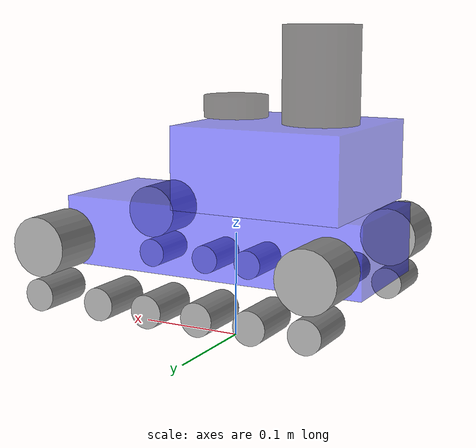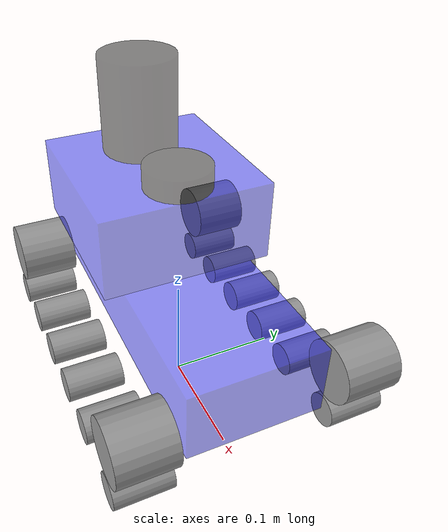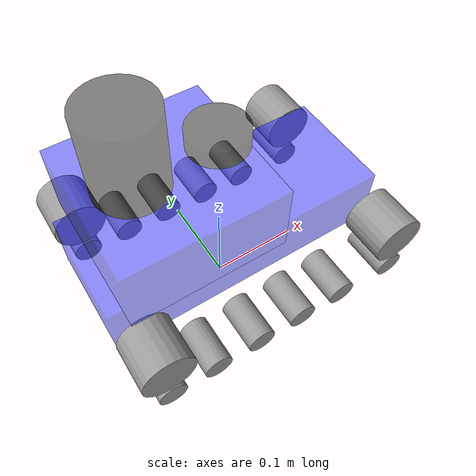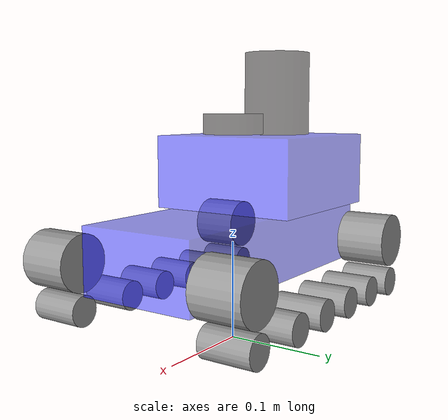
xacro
<?xml version="1.0"?>
<robot name="robot" xmlns:xacro="http://wiki.ros.org/xacro">
    <xacro:arg name="robot_color" default="Green" />
    <xacro:arg name="robot_name" default="robot" />
    <xacro:arg name="robot_namespace" default="" />
    <xacro:property name="robot_color" value="$(arg robot_color)"/>
    <xacro:property name="robot_name" value="$(arg robot_name)"/>
    <xacro:property name="robot_namespace" value="$(arg robot_namespace)"/>
    <xacro:property name="PI" value="3.1415926"/>
    <xacro:macro name="default_inertial" params="mass">
		<inertial>
			<mass value="1"/>
			<inertia ixx="0.1" ixy="0.0" ixz="0.0" iyy="0.1" iyz="0.0" izz="0.1" />
		</inertial>
	</xacro:macro>
    <xacro:macro name="wheel_func" params="wheel_name radius length xyz rpy mu mu2" >
        <link name="${robot_name}_${wheel_name}_link">
            <visual>
                <geometry>
                    <cylinder radius="${radius}" length="${length}" />
                </geometry>
                <origin xyz="0 0 0" rpy="${PI / 2} 0 0" />
            </visual>
            <collision>
                <origin xyz="0 0 0" rpy="${PI / 2} 0 0"/>
                <geometry>
                    <cylinder radius="${radius}" length="${length}" />
                </geometry>
            </collision>
            <xacro:default_inertial mass="0.3"/>
        </link>
        <joint name="${robot_name}_${wheel_name}_joint" type="continuous">
            <parent link="${robot_name}_base_link"/>
            <child link="${robot_name}_${wheel_name}_link"/>
            <origin xyz="${xyz}" rpy="${rpy}"/>
            <axis xyz="0 1 0" />
        </joint>
        <gazebo reference="${robot_name}_${wheel_name}_link">
            <material>Gazebo/Gray</material>
        </gazebo>
    </xacro:macro>

    <link name="${robot_name}_base_footprint"/>
    <link name="${robot_name}_base_link">
        <visual>
            <origin xyz="0 0 0" rpy="0 0 0"/>
            <geometry>
                <box size="0.300 0.120 0.065"/>
            </geometry>
            <material name="blue">
                <color rgba="0.1 0.1 1.0 0.5" />
            </material>
        </visual>
        <collision>
            <origin xyz="0 0 0" rpy="0 0 0"/>
            <geometry>
                <box size="0.300 0.120 0.065"/>
            </geometry>
            <material name="blue">
                <color rgba="0.1 0.1 1.0 0.5" />
            </material>
        </collision>
        <xacro:default_inertial mass="2"/>
    </link>
    <link name="${robot_name}_plat_link">
        <visual>
            <origin xyz="0 0 0.0" rpy="0 0 0"/>
            <geometry>
                <box size="0.16 0.155 0.075"/>
            </geometry>
            <material name="blue">
                <color rgba="0.1 0.1 1.0 0.5" />
            </material>
        </visual>
        <collision>
            <origin xyz="0 0 0" rpy="0 0 0"/>
            <geometry>
                <box size="0.16 0.155 0.075"/>
            </geometry>
            <material name="blue">
                <color rgba="0.1 0.1 1.0 0.5" />
            </material>
        </collision>
        <xacro:default_inertial mass="0.02"/>
    </link>
    <link name="${robot_name}_laser_link">
        <visual>
            <origin xyz="0 0 0" rpy="0 0 0"/>
            <geometry>
                <cylinder length="0.02" radius="0.03"/>
            </geometry>
            <material name="black">
                <color rgba="0.0 0.0 0.0 0.5" />
            </material>
        </visual>
        <collision>
            <origin xyz="0 0 0" rpy="0 0 0"/>
            <geometry>
                <cylinder length="0.02" radius="0.03"/>
            </geometry>
                <material name="black">
                <color rgba="0.0 0.0 0.0 0.5" />
            </material>
        </collision>
        <xacro:default_inertial mass="0.01"/>
    </link>
    <link name="${robot_name}_tripod_link">
        <visual>
            <origin xyz="0 0 0" rpy="0 0 0"/>
            <geometry>
                <cylinder length="0.09" radius="0.035"/>
            </geometry>
            <material name="black">
                <color rgba="0.0 0.0 0.0 0.5" />
            </material>
        </visual>
        <collision>
            <origin xyz="0 0 0" rpy="0 0 0"/>
            <geometry>
                <cylinder length="0.09" radius="0.035"/>
            </geometry>
                <material name="black">
                <color rgba="0.0 0.0 0.0 0.5" />
            </material>
        </collision>
        <xacro:default_inertial mass="0.01"/>
    </link>

    <joint name="${robot_name}_base_joint" type="fixed">
        <parent link="${robot_name}_base_footprint"/>
        <child link="${robot_name}_base_link"/>
        <origin xyz="0.0 0.0 0.1" rpy="0 0 0"/>
    </joint>
    <joint name="${robot_name}_plat_joint" type="fixed">
        <parent link="${robot_name}_base_link"/>
        <child link="${robot_name}_plat_link"/>
        <origin xyz="-0.055 0.0 0.07" rpy="0 0 0"/>
    </joint>
    <joint name="${robot_name}_laser_joint" type="fixed">
        <parent link="${robot_name}_plat_link"/>
        <child link="${robot_name}_laser_link"/>
        <origin xyz="0.055 0.0 0.05" rpy="0 0 0"/>
    </joint>
    <joint name="${robot_name}_tripod_joint" type="fixed">
        <parent link="${robot_name}_plat_link"/>
        <child link="${robot_name}_tripod_link"/>
        <origin xyz="-0.03 0.0 0.08" rpy="0 0 0"/>
    </joint>

    <xacro:wheel_func wheel_name="left_front" xyz="0.14 -0.095 -0.005" rpy="0 0 0" radius="0.0275" length="0.05" mu="1" mu2="1"/>

    <xacro:wheel_func wheel_name="left0" xyz="0.14 -0.095 -0.05" rpy="0 0 0" radius="0.015" length="0.05" mu="1" mu2="1"/>
    <xacro:wheel_func wheel_name="left1" xyz="0.075 -0.095 -0.05" rpy="0 0 0" radius="0.015" length="0.05" mu="1" mu2="1"/>
    <xacro:wheel_func wheel_name="left2" xyz="0.025 -0.095 -0.05" rpy="0 0 0" radius="0.015" length="0.05" mu="1" mu2="1"/>
    <xacro:wheel_func wheel_name="left3" xyz="-0.025 -0.095 -0.05" rpy="0 0 0" radius="0.015" length="0.05" mu="1" mu2="1"/>
    <xacro:wheel_func wheel_name="left4" xyz="-0.075 -0.095 -0.05" rpy="0 0 0" radius="0.015" length="0.05" mu="1" mu2="1"/>
    <xacro:wheel_func wheel_name="left5" xyz="-0.125 -0.095 -0.05" rpy="0 0 0" radius="0.015" length="0.05" mu="1" mu2="1"/>

    <xacro:wheel_func wheel_name="left_back" xyz="-0.125 -0.095 -0.005" rpy="0 0 0" radius="0.0275" length="0.05" mu="1" mu2="1"/>

    <xacro:wheel_func wheel_name="right_front" xyz="0.14 0.095 -0.005" rpy="0 0 0" radius="0.0275" length="0.05" mu="1" mu2="1"/>

    <xacro:wheel_func wheel_name="right0" xyz="0.14 0.095 -0.05" rpy="0 0 0" radius="0.015" length="0.05" mu="1" mu2="1"/>
    <xacro:wheel_func wheel_name="right1" xyz="0.075 0.095 -0.05" rpy="0 0 0" radius="0.015" length="0.05" mu="1" mu2="1"/>
    <xacro:wheel_func wheel_name="right2" xyz="0.025 0.095 -0.05" rpy="0 0 0" radius="0.015" length="0.05" mu="1" mu2="1"/>
    <xacro:wheel_func wheel_name="right3" xyz="-0.025 0.095 -0.05" rpy="0 0 0" radius="0.015" length="0.05" mu="1" mu2="1"/>
    <xacro:wheel_func wheel_name="right4" xyz="-0.075 0.095 -0.05" rpy="0 0 0" radius="0.015" length="0.05" mu="1" mu2="1"/>
    <xacro:wheel_func wheel_name="right5" xyz="-0.125 0.095 -0.05" rpy="0 0 0" radius="0.015" length="0.05" mu="1" mu2="1"/>

    <xacro:wheel_func wheel_name="right_back" xyz="-0.125 0.095 -0.005" rpy="0 0 0" radius="0.0275" length="0.05" mu="1" mu2="1"/>

    <gazebo reference="${robot_name}_base_link">
        <material>Gazebo/${robot_color}</material>
    </gazebo>
    <gazebo reference="${robot_name}_plat_link">
        <material>Gazebo/Black</material>
    </gazebo>
    <gazebo reference="${robot_name}_laser_link">
        <material>Gazebo/Gray</material>
    </gazebo>
    <gazebo reference="${robot_name}_tripod_link">
        <material>Gazebo/Gray</material>
    </gazebo>

    <gazebo>
        <plugin name='${robot_name}_diff_drive' filename='libgazebo_ros_planar_move.so'>
            <ros>
                <namespace>/${robot_namespace}</namespace>
            </ros>
            <update_rate>100</update_rate>
            <publish_rate>10</publish_rate>
            <publish_odom>true</publish_odom>
            <publish_odom_tf>true</publish_odom_tf>

            <odometry_frame>${robot_name}_odom</odometry_frame>
            <robot_base_frame>${robot_name}_base_footprint</robot_base_frame>
        </plugin>
    </gazebo>

</robot>
